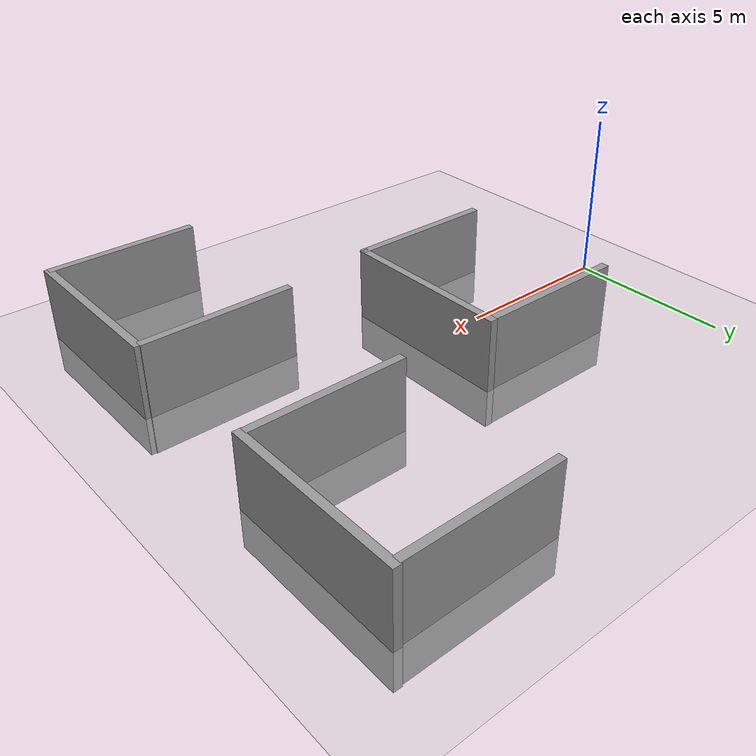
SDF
<sdf version="1.6">
 <world name="default">
  <plugin name="disable_physics" filename="libdisable_physics.so"/>
  <light name="sun" type="directional">
   <cast_shadows>0</cast_shadows>
   <pose>0 0 10 0 -0 0</pose>
   <diffuse>0.8 0.8 0.8 1</diffuse>
   <specular>0.2 0.2 0.2 1</specular>
   <attenuation>
    <range>1000</range>
    <constant>0.9</constant>
    <linear>0.01</linear>
    <quadratic>0.001</quadratic>
   </attenuation>
   <direction>-0.5 0.1 -0.9</direction>
  </light>
  <model name="ground_plane">
   <static>1</static>
   <link name="link">
    <collision name="collision">
     <geometry><plane><normal>0 0 1</normal><size>200 200</size></plane></geometry>
     <surface><friction><ode><mu>100</mu><mu2>50</mu2></ode></friction></surface>
    </collision>
    <visual name="visual">
     <cast_shadows>0</cast_shadows>
     <geometry><plane><normal>0 0 1</normal><size>200 200</size></plane></geometry>
     <material>
      <script><uri>file://media/materials/scripts/gazebo.material</uri><name>Gazebo/Grey</name></script>
     </material>
    </visual>
   </link>
  </model>
  <physics name="default_physics" default="0" type="ode">
   <max_step_size>0.001</max_step_size>
   <real_time_factor>1</real_time_factor>
   <real_time_update_rate>1000</real_time_update_rate>
  </physics>
  <scene><ambient>0.4 0.4 0.4 1</ambient><background>0.7 0.7 0.7 1</background><shadows>0</shadows></scene>
  <spherical_coordinates>
   <surface_model>EARTH_WGS84</surface_model>
   <latitude_deg>0</latitude_deg>
   <longitude_deg>0</longitude_deg>
   <elevation>0</elevation>
   <heading_deg>0</heading_deg>
  </spherical_coordinates>
  <gravity>0 0 -9.8</gravity>
  <magnetic_field>6e-06 2.3e-05 -4.2e-05</magnetic_field>
  <atmosphere type="adiabatic"/>
  <model name="unit_box_0_0">
   <pose>7.38505 0.268475 0.5 0 -0 0</pose>
   <link name="link">
    <inertial>
     <mass>1</mass>
     <inertia>
      <ixx>0.166667</ixx>
      <ixy>0</ixy>
      <ixz>0</ixz>
      <iyy>0.166667</iyy>
      <iyz>0</iyz>
      <izz>0.166667</izz>
     </inertia>
    </inertial>
    <collision name="collision"><geometry><box><size>0.237691 5.35849 3.33454</size></box></geometry></collision>
    <visual name="visual">
     <geometry><box><size>0.237691 5.35849 3.33454</size></box></geometry>
     <material>
      <script><name>Gazebo/Grey</name><uri>file://media/materials/scripts/gazebo.material</uri></script>
     </material>
    </visual>
   </link>
  </model>
  <model name="unit_box_0_0_clone">
   <pose>5.04218 2.80613 0.5 0 0 -1.56726</pose>
   <link name="link">
    <inertial>
     <mass>1</mass>
     <inertia>
      <ixx>0.166667</ixx>
      <ixy>0</ixy>
      <ixz>0</ixz>
      <iyy>0.166667</iyy>
      <iyz>0</iyz>
      <izz>0.166667</izz>
     </inertia>
    </inertial>
    <collision name="collision"><geometry><box><size>0.237691 4.56821 3.33454</size></box></geometry></collision>
    <visual name="visual">
     <geometry><box><size>0.237691 4.56821 3.33454</size></box></geometry>
     <material>
      <script><name>Gazebo/Grey</name><uri>file://media/materials/scripts/gazebo.material</uri></script>
     </material>
    </visual>
   </link>
  </model>
  <model name="unit_box_0_0_clone_clone">
   <pose>5.1546 -2.36094 0.5 0 0 -1.56726</pose>
   <link name="link">
    <inertial>
     <mass>1</mass>
     <inertia>
      <ixx>0.166667</ixx>
      <ixy>0</ixy>
      <ixz>0</ixz>
      <iyy>0.166667</iyy>
      <iyz>0</iyz>
      <izz>0.166667</izz>
     </inertia>
    </inertial>
    <collision name="collision"><geometry><box><size>0.237691 4.56821 3.33454</size></box></geometry></collision>
    <visual name="visual">
     <geometry><box><size>0.237691 4.56821 3.33454</size></box></geometry>
     <material>
      <script><name>Gazebo/Grey</name><uri>file://media/materials/scripts/gazebo.material</uri></script>
     </material>
    </visual>
   </link>
  </model>
  <model name="unit_box_0_0_clone_clone_0">
   <pose>12.5441 7.77361 0.5 0 0 -1.56726</pose>
   <link name="link">
    <inertial>
     <mass>1</mass>
     <inertia>
      <ixx>0.166667</ixx>
      <ixy>0</ixy>
      <ixz>0</ixz>
      <iyy>0.166667</iyy>
      <iyz>0</iyz>
      <izz>0.166667</izz>
     </inertia>
    </inertial>
    <collision name="collision"><geometry><box><size>0.237691 4.56821 3.33454</size></box></geometry></collision>
    <visual name="visual">
     <geometry><box><size>0.237691 4.56821 3.33454</size></box></geometry>
     <material>
      <script><name>Gazebo/Grey</name><uri>file://media/materials/scripts/gazebo.material</uri></script>
     </material>
    </visual>
   </link>
  </model>
  <model name="unit_box_0_0_clone_clone_1">
   <pose>12.5449 2.69601 0.5 0 0 -1.56726</pose>
   <link name="link">
    <inertial>
     <mass>1</mass>
     <inertia>
      <ixx>0.166667</ixx>
      <ixy>0</ixy>
      <ixz>0</ixz>
      <iyy>0.166667</iyy>
      <iyz>0</iyz>
      <izz>0.166667</izz>
     </inertia>
    </inertial>
    <collision name="collision"><geometry><box><size>0.237691 4.56821 3.33454</size></box></geometry></collision>
    <visual name="visual">
     <geometry><box><size>0.237691 4.56821 3.33454</size></box></geometry>
     <material>
      <script><name>Gazebo/Grey</name><uri>file://media/materials/scripts/gazebo.material</uri></script>
     </material>
    </visual>
   </link>
  </model>
  <model name="unit_box_0_0_clone_0">
   <pose>14.9226 5.25366 0.5 0 -0 0</pose>
   <link name="link">
    <inertial>
     <mass>1</mass>
     <inertia>
      <ixx>0.166667</ixx>
      <ixy>0</ixy>
      <ixz>0</ixz>
      <iyy>0.166667</iyy>
      <iyz>0</iyz>
      <izz>0.166667</izz>
     </inertia>
    </inertial>
    <collision name="collision"><geometry><box><size>0.237691 5.35849 3.33454</size></box></geometry></collision>
    <visual name="visual">
     <geometry><box><size>0.237691 5.35849 3.33454</size></box></geometry>
     <material>
      <script><name>Gazebo/Grey</name><uri>file://media/materials/scripts/gazebo.material</uri></script>
     </material>
    </visual>
   </link>
  </model>
  <model name="unit_box_0_0_clone_1">
   <pose>14.9038 -4.56698 0.5 0 -0 0</pose>
   <link name="link">
    <inertial>
     <mass>1</mass>
     <inertia>
      <ixx>0.166667</ixx>
      <ixy>0</ixy>
      <ixz>0</ixz>
      <iyy>0.166667</iyy>
      <iyz>0</iyz>
      <izz>0.166667</izz>
     </inertia>
    </inertial>
    <collision name="collision"><geometry><box><size>0.237691 5.35849 3.33454</size></box></geometry></collision>
    <visual name="visual">
     <geometry><box><size>0.237691 5.35849 3.33454</size></box></geometry>
     <material>
      <script><name>Gazebo/Grey</name><uri>file://media/materials/scripts/gazebo.material</uri></script>
     </material>
    </visual>
   </link>
  </model>
  <model name="unit_box_0_0_clone_clone_clone">
   <pose>12.584 -1.98379 0.5 0 0 -1.56726</pose>
   <link name="link">
    <inertial>
     <mass>1</mass>
     <inertia>
      <ixx>0.166667</ixx>
      <ixy>0</ixy>
      <ixz>0</ixz>
      <iyy>0.166667</iyy>
      <iyz>0</iyz>
      <izz>0.166667</izz>
     </inertia>
    </inertial>
    <collision name="collision"><geometry><box><size>0.237691 4.56821 3.33454</size></box></geometry></collision>
    <visual name="visual">
     <geometry><box><size>0.237691 4.56821 3.33454</size></box></geometry>
     <material>
      <script><name>Gazebo/Grey</name><uri>file://media/materials/scripts/gazebo.material</uri></script>
     </material>
    </visual>
   </link>
  </model>
  <model name="unit_box_0_0_clone_clone_2">
   <pose>12.6476 -7.14836 0.5 0 0 -1.56726</pose>
   <link name="link">
    <inertial>
     <mass>1</mass>
     <inertia>
      <ixx>0.166667</ixx>
      <ixy>0</ixy>
      <ixz>0</ixz>
      <iyy>0.166667</iyy>
      <iyz>0</iyz>
      <izz>0.166667</izz>
     </inertia>
    </inertial>
    <collision name="collision"><geometry><box><size>0.237691 4.56821 3.33454</size></box></geometry></collision>
    <visual name="visual">
     <geometry><box><size>0.237691 4.56821 3.33454</size></box></geometry>
     <material>
      <script><name>Gazebo/Grey</name><uri>file://media/materials/scripts/gazebo.material</uri></script>
     </material>
    </visual>
   </link>
  </model>
 </world>
</sdf>
